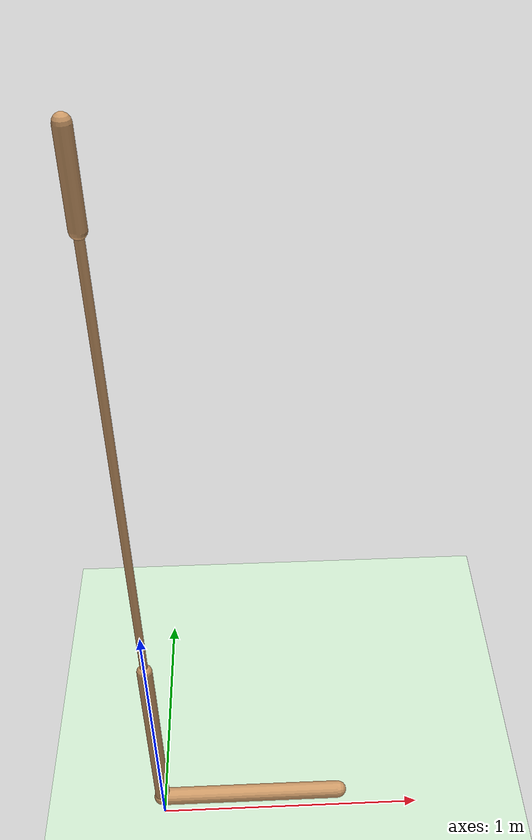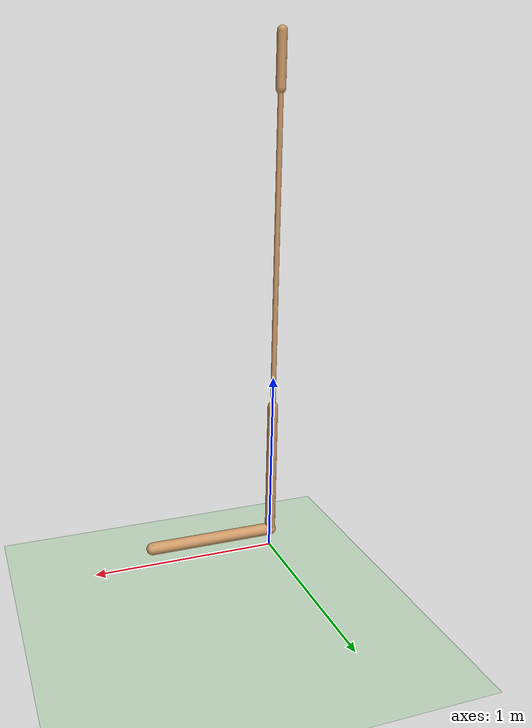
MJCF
<mujoco model="walker2d">
  <compiler angle="degree" inertiafromgeom="true" />
  <default>
    <joint armature="0.01" damping=".1" limited="true" />
    <geom conaffinity="0" condim="3" contype="1" density="1000" friction=".7 .1 .1" rgba="0.8 0.6 .4 1" />
  </default>
  <option integrator="RK4" timestep="0.002" />
  <worldbody>
    <light cutoff="100" diffuse="1 1 1" dir="-0 0 -1.3" directional="true" exponent="1" pos="0 0 1.3" specular=".1 .1 .1" />
    <geom conaffinity="1" condim="3" name="floor" pos="0 0 0" rgba="0.8 0.9 0.8 1" size="40 40 40" type="plane" material="MatPlane" />
    <body name="torso" pos="0 0 2.615461876988411">
      <camera name="track" mode="trackcom" pos="0 -5 -1.25" xyaxes="1 0 0 0 0 1" />
      <joint armature="0" axis="1 0 0" damping="0" limited="false" name="rootx" pos="0 0 -1.25" stiffness="0" type="slide" />
      <joint armature="0" axis="0 0 1" damping="0" limited="false" name="rootz" pos="0 0 -1.25" ref="1.25" stiffness="0" type="slide" />
      <joint armature="0" axis="0 1 0" damping="0" limited="false" name="rooty" pos="0 0 0" stiffness="0" type="hinge" />
      <geom friction="0.9" name="torso_geom" size="0.025278495624661446 0.13305635750293732" type="capsule" />
      <body name="thigh" pos="0 0 -0.13305635750293732">
        <joint axis="0 -1 0" name="thigh_joint" pos="0 0 0" range="-150 0" type="hinge" />
        <site name="torso_thigh_site" pos="0 0 0" size="0.01" type="sphere" rgba="1 0 0 0.5" />
        <geom friction="0.9" pos="0 0 -0.8227785229682922" name="thigh_geom" size="0.013998018577694893 0.8227785229682922" type="capsule" />
        <body name="leg" pos="0 0 -2.013981282711029">
          <joint axis="0 -1 0" name="leg_joint" pos="0 0 0.3684242367744446" range="-150 0" type="hinge" />
          <site name="thigh_leg_site" pos="0 0 0.25" size="0.01" type="sphere" rgba="1 0 0 0.5" />
          <geom friction="0.9" name="leg_geom" size="0.027908772230148315 0.3684242367744446" type="capsule" />
          <body name="foot" pos="0.6856408715248108 0 -0.46842423677444456">
            <joint axis="0 -1 0" name="foot_joint" pos="-0.6856408715248108 0 0.1" range="-45 45" type="hinge" />
            <site name="leg_foot_site" pos="-0.2 0 0.1" size="0.01" type="sphere" rgba="1 0 0 0.5" />
            <geom friction="0.9" pos="-0.3428204357624054 0 0.1" quat="0.70710678118654757 0 -0.70710678118654746 0" name="foot_geom" size="0.033475112169981 0.3428204357624054" type="capsule" />
          </body>
        </body>
      </body>

      <body name="thigh_left" pos="0 0 -0.13305635750293732">
        <joint axis="0 -1 0" name="thigh_left_joint" pos="0 0 0" range="-150 0" type="hinge" />
        <site name="torso_thigh_left_site" pos="0 0 0" size="0.01" type="sphere" rgba="1 0 0 0.5" />
        <geom friction="0.9" name="thigh_left_geom" rgba=".7 .3 .6 1" size="0.013998018577694893 0.8227785229682922" pos="0 0 -0.8227785229682922" type="capsule" />
        <body name="leg_left" pos="0 0 -2.013981282711029">
          <joint axis="0 -1 0" name="leg_left_joint" pos="0 0 0.3684242367744446" range="-150 0" type="hinge" />
          <site name="thigh_leg_left_site" pos="0 0 0.25" size="0.01" type="sphere" rgba="1 0 0 0.5" />
          <geom friction="0.9" name="leg_left_geom" rgba=".7 .3 .6 1" size="0.027908772230148315 0.3684242367744446" type="capsule" />
          <body name="foot_left" pos="0.6856408715248108 0 -0.46842423677444456">
            <joint axis="0 -1 0" name="foot_left_joint" pos="-0.6856408715248108 0 0.1" range="-45 45" type="hinge" />
            <site name="leg_foot_left_site" pos="-0.2 0 0.1" size="0.01" type="sphere" rgba="1 0 0 0.5" />
            <geom friction="1.9" name="foot_left_geom" rgba=".7 .3 .6 1" size="0.033475112169981 0.3428204357624054" pos="-0.3428204357624054 0 0.1" type="capsule" quat="0.70710678118654757 0 -0.70710678118654746 0" />
          </body>
        </body>
      </body>
    </body>
  </worldbody>
  <actuator>

    <motor ctrllimited="true" ctrlrange="-1.0 1.0" gear="28.6611459775911" joint="thigh_joint" />
    <motor ctrllimited="true" ctrlrange="-1.0 1.0" gear="71.7413696602973" joint="leg_joint" />
    <motor ctrllimited="true" ctrlrange="-1.0 1.0" gear="106.71077738268706" joint="foot_joint" />
    <motor ctrllimited="true" ctrlrange="-1.0 1.0" gear="28.6611459775911" joint="thigh_left_joint" />
    <motor ctrllimited="true" ctrlrange="-1.0 1.0" gear="71.7413696602973" joint="leg_left_joint" />
    <motor ctrllimited="true" ctrlrange="-1.0 1.0" gear="106.71077738268706" joint="foot_left_joint" />

  </actuator>
    <asset>
        <texture type="skybox" builtin="gradient" rgb1=".4 .5 .6" rgb2="0 0 0" width="100" height="100" />
        <texture builtin="flat" height="1278" mark="cross" markrgb="1 1 1" name="texgeom" random="0.01" rgb1="0.8 0.6 0.4" rgb2="0.8 0.6 0.4" type="cube" width="127" />
        <texture builtin="checker" height="100" name="texplane" rgb1="0 0 0" rgb2="0.8 0.8 0.8" type="2d" width="100" />
        <material name="MatPlane" reflectance="0.5" shininess="1" specular="1" texrepeat="60 60" texture="texplane" />
        <material name="geom" texture="texgeom" texuniform="true" />
    </asset>

  <sensor>
    <force site="torso_thigh_site" name="torso_thigh_sensor" />
    <force site="thigh_leg_site" name="thigh_leg_sensor" />
    <force site="leg_foot_site" name="leg_foot_sensor" />
    <force site="torso_thigh_left_site" name="torso_thigh_left_sensor" />
    <force site="thigh_leg_left_site" name="thigh_leg_left_sensor" />
    <force site="leg_foot_left_site" name="leg_foot_left_sensor" />
  </sensor>
</mujoco>
